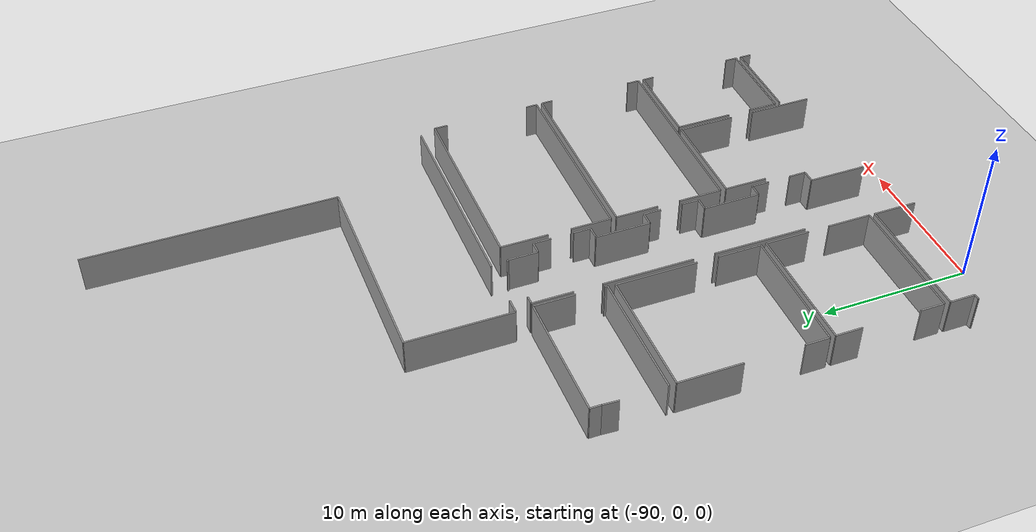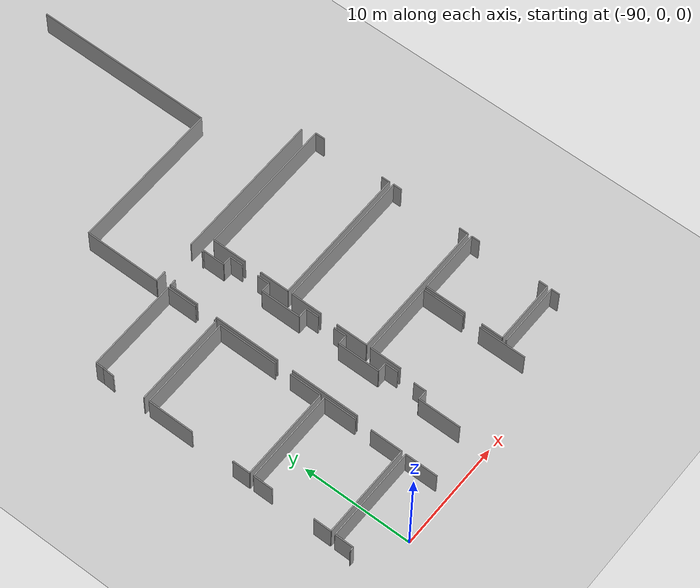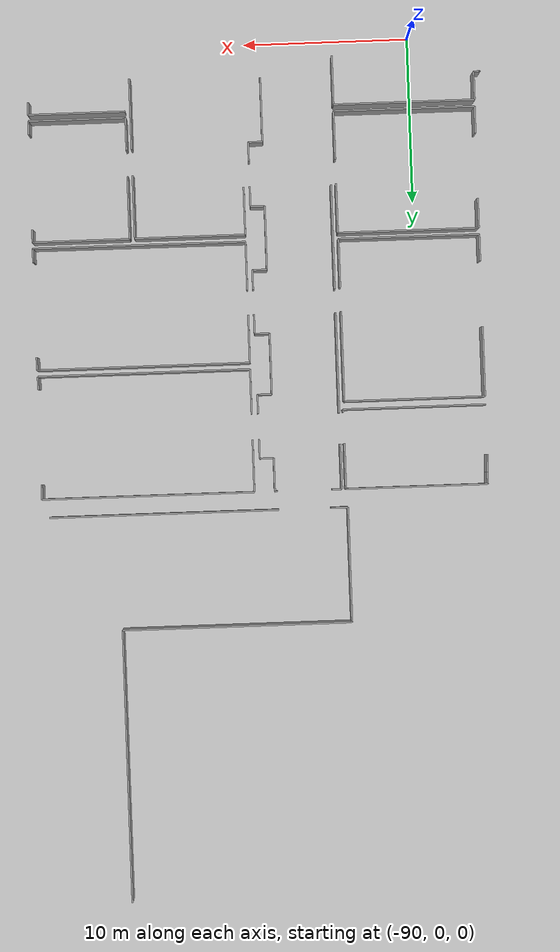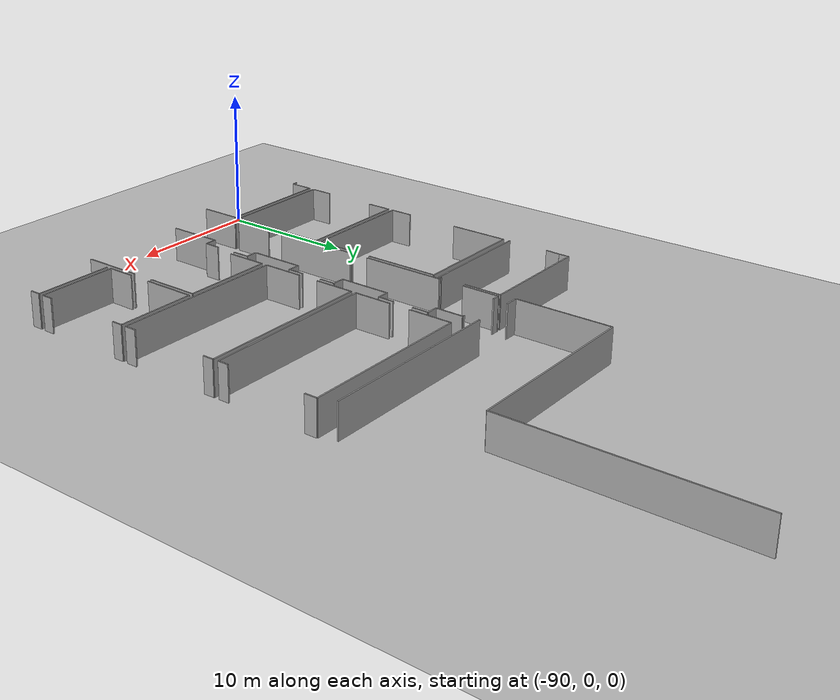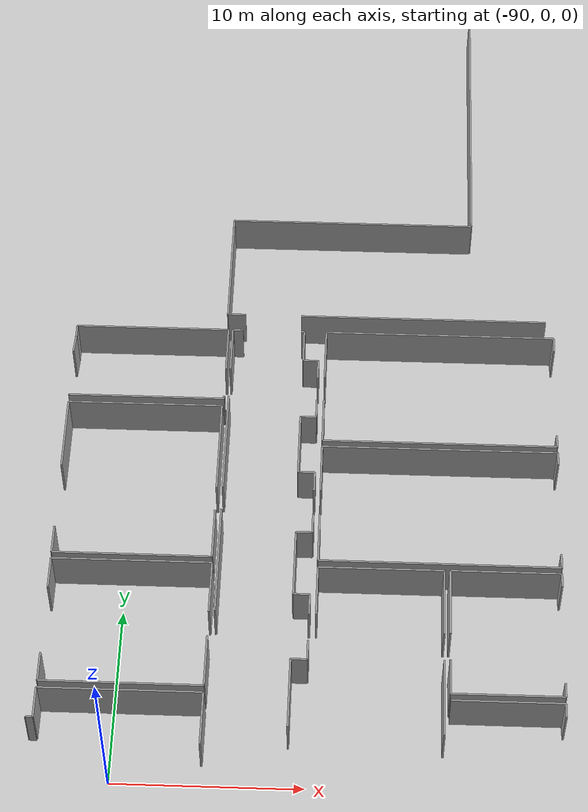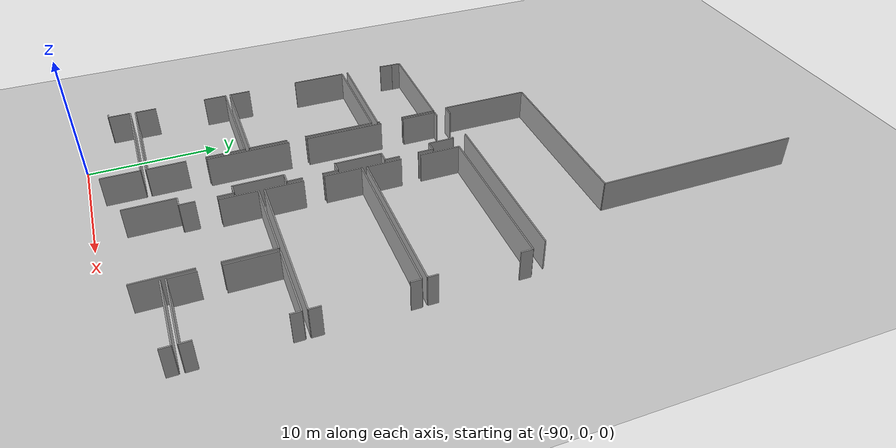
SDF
<sdf version="1.6">
 <world name="default">
  <model name="ground_plane">
   <static>1</static>
   <link name="link">
    <collision name="collision">
     <geometry><plane><normal>0 0 1</normal><size>100 100</size></plane></geometry>
     <surface><friction><ode><mu>100</mu><mu2>50</mu2></ode></friction></surface>
    </collision>
    <visual name="visual">
     <cast_shadows>0</cast_shadows>
     <geometry><plane><normal>0 0 1</normal><size>100 100</size></plane></geometry>
     <material>
      <script><uri>file://media/materials/scripts/gazebo.material</uri><name>Gazebo/Grey</name></script>
     </material>
    </visual>
   </link>
  </model>
  <model name="0510035517_A_40_1_105">
   <static>1</static>
   <link name="Wall_99">
    <collision name="Wall_99_Collision">
     <geometry><box><size>13.9229777041 0.1 2.5</size></box></geometry>
     <pose>6.96148885204 0 1.25 0 0 0</pose>
    </collision>
    <visual name="Wall_99_Visual">
     <pose>6.96148885204 0 1.25 0 0 0</pose>
     <geometry><box><size>13.9229777041 0.1 2.5</size></box></geometry>
     <material>
      <script><uri>file://media/materials/scripts/gazebo.material</uri><name>Gazebo/Grey</name></script>
      <ambient>1 1 1 1</ambient>
     </material>
    </visual>
    <pose>27.3864394503 -35.2833533482 0 0 0 3.14159265359</pose>
   </link>
   <link name="Wall_100">
    <collision name="Wall_100_Collision">
     <geometry><box><size>1.01916979598 0.1 2.5</size></box></geometry>
     <pose>0.509584897988 0 1.25 0 0 0</pose>
    </collision>
    <visual name="Wall_100_Visual">
     <pose>0.509584897988 0 1.25 0 0 0</pose>
     <geometry><box><size>1.01916979598 0.1 2.5</size></box></geometry>
     <material>
      <script><uri>file://media/materials/scripts/gazebo.material</uri><name>Gazebo/Grey</name></script>
      <ambient>1 1 1 1</ambient>
     </material>
    </visual>
    <pose>10.2908192117 -35.2833533482 0 0 0 3.14159265359</pose>
   </link>
   <link name="Wall_101">
    <collision name="Wall_101_Collision">
     <geometry><box><size>6.96847817109 0.1 2.5</size></box></geometry>
     <pose>3.48423908554 0 1.25 0 0 0</pose>
    </collision>
    <visual name="Wall_101_Visual">
     <pose>3.48423908554 0 1.25 0 0 0</pose>
     <geometry><box><size>6.96847817109 0.1 2.5</size></box></geometry>
     <material>
      <script><uri>file://media/materials/scripts/gazebo.material</uri><name>Gazebo/Grey</name></script>
      <ambient>1 1 1 1</ambient>
     </material>
    </visual>
    <pose>9.27164941576 -35.2833533482 0 0 0 1.57079632679</pose>
   </link>
   <link name="Wall_102">
    <collision name="Wall_102_Collision">
     <geometry><box><size>13.9204361335 0.1 2.5</size></box></geometry>
     <pose>6.96021806675 0 1.25 0 0 0</pose>
    </collision>
    <visual name="Wall_102_Visual">
     <pose>6.96021806675 0 1.25 0 0 0</pose>
     <geometry><box><size>13.9204361335 0.1 2.5</size></box></geometry>
     <material>
      <script><uri>file://media/materials/scripts/gazebo.material</uri><name>Gazebo/Grey</name></script>
      <ambient>1 1 1 1</ambient>
     </material>
    </visual>
    <pose>9.27164941576 -28.3148751771 0 0 0 0.0</pose>
   </link>
   <link name="Wall_103">
    <collision name="Wall_103_Collision">
     <geometry><box><size>16.5209711341 0.1 2.5</size></box></geometry>
     <pose>8.26048556706 0 1.25 0 0 0</pose>
    </collision>
    <visual name="Wall_103_Visual">
     <pose>8.26048556706 0 1.25 0 0 0</pose>
     <geometry><box><size>16.5209711341 0.1 2.5</size></box></geometry>
     <material>
      <script><uri>file://media/materials/scripts/gazebo.material</uri><name>Gazebo/Grey</name></script>
      <ambient>1 1 1 1</ambient>
     </material>
    </visual>
    <pose>23.1920855493 -28.3148751771 0 0 0 1.57079632679</pose>
   </link>
   <link name="Wall_321">
    <collision name="Wall_321_Collision">
     <geometry><box><size>0.732734793466 0.1 2.5</size></box></geometry>
     <pose>0.366367396733 0 1.25 0 0 0</pose>
    </collision>
    <visual name="Wall_321_Visual">
     <pose>0.366367396733 0 1.25 0 0 0</pose>
     <geometry><box><size>0.732734793466 0.1 2.5</size></box></geometry>
     <material>
      <script><uri>file://media/materials/scripts/gazebo.material</uri><name>Gazebo/Grey</name></script>
      <ambient>1 1 1 1</ambient>
     </material>
    </visual>
    <pose>0.744934332171 -37.1326000902 0 0 0 1.57079632679</pose>
   </link>
   <link name="Wall_322">
    <collision name="Wall_322_Collision">
     <geometry><box><size>8.61007859807 0.1 2.5</size></box></geometry>
     <pose>4.30503929903 0 1.25 0 0 0</pose>
    </collision>
    <visual name="Wall_322_Visual">
     <pose>4.30503929903 0 1.25 0 0 0</pose>
     <geometry><box><size>8.61007859807 0.1 2.5</size></box></geometry>
     <material>
      <script><uri>file://media/materials/scripts/gazebo.material</uri><name>Gazebo/Grey</name></script>
      <ambient>1 1 1 1</ambient>
     </material>
    </visual>
    <pose>0.744934332171 -36.3998652968 0 0 0 0.0</pose>
   </link>
   <link name="Wall_323">
    <collision name="Wall_323_Collision">
     <geometry><box><size>2.75455417675 0.1 2.5</size></box></geometry>
     <pose>1.37727708838 0 1.25 0 0 0</pose>
    </collision>
    <visual name="Wall_323_Visual">
     <pose>1.37727708838 0 1.25 0 0 0</pose>
     <geometry><box><size>2.75455417675 0.1 2.5</size></box></geometry>
     <material>
      <script><uri>file://media/materials/scripts/gazebo.material</uri><name>Gazebo/Grey</name></script>
      <ambient>1 1 1 1</ambient>
     </material>
    </visual>
    <pose>9.35501293024 -36.3998652968 0 0 0 -1.57079632679</pose>
   </link>
   <link name="Wall_324">
    <collision name="Wall_324_Collision">
     <geometry><box><size>0.180451510011 0.1 2.5</size></box></geometry>
     <pose>0.0902257550053 0 1.25 0 0 0</pose>
    </collision>
    <visual name="Wall_324_Visual">
     <pose>0.0902257550053 0 1.25 0 0 0</pose>
     <geometry><box><size>0.180451510011 0.1 2.5</size></box></geometry>
     <material>
      <script><uri>file://media/materials/scripts/gazebo.material</uri><name>Gazebo/Grey</name></script>
      <ambient>1 1 1 1</ambient>
     </material>
    </visual>
    <pose>9.35501293024 -41.046364601 0 0 0 -1.57079632679</pose>
   </link>
   <link name="Wall_325">
    <collision name="Wall_325_Collision">
     <geometry><box><size>8.67310954805 0.1 2.5</size></box></geometry>
     <pose>4.33655477402 0 1.25 0 0 0</pose>
    </collision>
    <visual name="Wall_325_Visual">
     <pose>4.33655477402 0 1.25 0 0 0</pose>
     <geometry><box><size>8.67310954805 0.1 2.5</size></box></geometry>
     <material>
      <script><uri>file://media/materials/scripts/gazebo.material</uri><name>Gazebo/Grey</name></script>
      <ambient>1 1 1 1</ambient>
     </material>
    </visual>
    <pose>9.35501293024 -41.226816111 0 0 0 3.14159265359</pose>
   </link>
   <link name="Wall_326">
    <collision name="Wall_326_Collision">
     <geometry><box><size>1.0632298287 0.1 2.5</size></box></geometry>
     <pose>0.531614914349 0 1.25 0 0 0</pose>
    </collision>
    <visual name="Wall_326_Visual">
     <pose>0.531614914349 0 1.25 0 0 0</pose>
     <geometry><box><size>1.0632298287 0.1 2.5</size></box></geometry>
     <material>
      <script><uri>file://media/materials/scripts/gazebo.material</uri><name>Gazebo/Grey</name></script>
      <ambient>1 1 1 1</ambient>
     </material>
    </visual>
    <pose>0.681903382195 -38.1939599576 0 0 0 1.51147902182</pose>
   </link>
   <link name="Wall_327">
    <collision name="Wall_327_Collision">
     <geometry><box><size>1.6263510036 0.1 2.5</size></box></geometry>
     <pose>0.813175501801 0 1.25 0 0 0</pose>
    </collision>
    <visual name="Wall_327_Visual">
     <pose>0.813175501801 0 1.25 0 0 0</pose>
     <geometry><box><size>1.6263510036 0.1 2.5</size></box></geometry>
     <material>
      <script><uri>file://media/materials/scripts/gazebo.material</uri><name>Gazebo/Grey</name></script>
      <ambient>1 1 1 1</ambient>
     </material>
    </visual>
    <pose>0.728414123508 -51.5588087659 0 0 0 1.57079632679</pose>
   </link>
   <link name="Wall_328">
    <collision name="Wall_328_Collision">
     <geometry><box><size>4.25433496629 0.1 2.5</size></box></geometry>
     <pose>2.12716748315 0 1.25 0 0 0</pose>
    </collision>
    <visual name="Wall_328_Visual">
     <pose>2.12716748315 0 1.25 0 0 0</pose>
     <geometry><box><size>4.25433496629 0.1 2.5</size></box></geometry>
     <material>
      <script><uri>file://media/materials/scripts/gazebo.material</uri><name>Gazebo/Grey</name></script>
      <ambient>1 1 1 1</ambient>
     </material>
    </visual>
    <pose>0.728414123508 -45.971165882 0 0 0 1.57079632679</pose>
   </link>
   <link name="Wall_329">
    <collision name="Wall_329_Collision">
     <geometry><box><size>8.54374360636 0.1 2.5</size></box></geometry>
     <pose>4.27187180318 0 1.25 0 0 0</pose>
    </collision>
    <visual name="Wall_329_Visual">
     <pose>4.27187180318 0 1.25 0 0 0</pose>
     <geometry><box><size>8.54374360636 0.1 2.5</size></box></geometry>
     <material>
      <script><uri>file://media/materials/scripts/gazebo.material</uri><name>Gazebo/Grey</name></script>
      <ambient>1 1 1 1</ambient>
     </material>
    </visual>
    <pose>0.728414123508 -41.7168309157 0 0 0 0.0</pose>
   </link>
   <link name="Wall_330">
    <collision name="Wall_330_Collision">
     <geometry><box><size>5.45827694224 0.1 2.5</size></box></geometry>
     <pose>2.72913847112 0 1.25 0 0 0</pose>
    </collision>
    <visual name="Wall_330_Visual">
     <pose>2.72913847112 0 1.25 0 0 0</pose>
     <geometry><box><size>5.45827694224 0.1 2.5</size></box></geometry>
     <material>
      <script><uri>file://media/materials/scripts/gazebo.material</uri><name>Gazebo/Grey</name></script>
      <ambient>1 1 1 1</ambient>
     </material>
    </visual>
    <pose>9.27215772987 -41.7168309157 0 0 0 -1.57079632679</pose>
   </link>
   <link name="Wall_331">
    <collision name="Wall_331_Collision">
     <geometry><box><size>2.94212208434 0.1 2.5</size></box></geometry>
     <pose>1.47106104217 0 1.25 0 0 0</pose>
    </collision>
    <visual name="Wall_331_Visual">
     <pose>1.47106104217 0 1.25 0 0 0</pose>
     <geometry><box><size>2.94212208434 0.1 2.5</size></box></geometry>
     <material>
      <script><uri>file://media/materials/scripts/gazebo.material</uri><name>Gazebo/Grey</name></script>
      <ambient>1 1 1 1</ambient>
     </material>
    </visual>
    <pose>9.27215772987 -48.636765089 0 0 0 -1.57079632679</pose>
   </link>
   <link name="Wall_332">
    <collision name="Wall_332_Collision">
     <geometry><box><size>8.54376719917 0.1 2.5</size></box></geometry>
     <pose>4.27188359959 0 1.25 0 0 0</pose>
    </collision>
    <visual name="Wall_332_Visual">
     <pose>4.27188359959 0 1.25 0 0 0</pose>
     <geometry><box><size>8.54376719917 0.1 2.5</size></box></geometry>
     <material>
      <script><uri>file://media/materials/scripts/gazebo.material</uri><name>Gazebo/Grey</name></script>
      <ambient>1 1 1 1</ambient>
     </material>
    </visual>
    <pose>9.27215772987 -51.5788871733 0 0 0 3.13924258652</pose>
   </link>
   <link name="Wall_333">
    <collision name="Wall_333_Collision">
     <geometry><box><size>1.62711347477 0.1 2.5</size></box></geometry>
     <pose>0.813556737386 0 1.25 0 0 0</pose>
    </collision>
    <visual name="Wall_333_Visual">
     <pose>0.813556737386 0 1.25 0 0 0</pose>
     <geometry><box><size>1.62711347477 0.1 2.5</size></box></geometry>
     <material>
      <script><uri>file://media/materials/scripts/gazebo.material</uri><name>Gazebo/Grey</name></script>
      <ambient>1 1 1 1</ambient>
     </material>
    </visual>
    <pose>0.739088719874 -59.3192403246 0 0 0 1.57079632679</pose>
   </link>
   <link name="Wall_334">
    <collision name="Wall_334_Collision">
     <geometry><box><size>1.79765285958 0.1 2.5</size></box></geometry>
     <pose>0.898826429792 0 1.25 0 0 0</pose>
    </collision>
    <visual name="Wall_334_Visual">
     <pose>0.898826429792 0 1.25 0 0 0</pose>
     <geometry><box><size>1.79765285958 0.1 2.5</size></box></geometry>
     <material>
      <script><uri>file://media/materials/scripts/gazebo.material</uri><name>Gazebo/Grey</name></script>
      <ambient>1 1 1 1</ambient>
     </material>
    </visual>
    <pose>0.739088719874 -53.7404929376 0 0 0 1.57079632679</pose>
   </link>
   <link name="Wall_335">
    <collision name="Wall_335_Collision">
     <geometry><box><size>8.55975550091 0.1 2.5</size></box></geometry>
     <pose>4.27987775046 0 1.25 0 0 0</pose>
    </collision>
    <visual name="Wall_335_Visual">
     <pose>4.27987775046 0 1.25 0 0 0</pose>
     <geometry><box><size>8.55975550091 0.1 2.5</size></box></geometry>
     <material>
      <script><uri>file://media/materials/scripts/gazebo.material</uri><name>Gazebo/Grey</name></script>
      <ambient>1 1 1 1</ambient>
     </material>
    </visual>
    <pose>0.739088719874 -51.942840078 0 0 0 0.0</pose>
   </link>
   <link name="Wall_336">
    <collision name="Wall_336_Collision">
     <geometry><box><size>3.00006989319 0.1 2.5</size></box></geometry>
     <pose>1.5000349466 0 1.25 0 0 0</pose>
    </collision>
    <visual name="Wall_336_Visual">
     <pose>1.5000349466 0 1.25 0 0 0</pose>
     <geometry><box><size>3.00006989319 0.1 2.5</size></box></geometry>
     <material>
      <script><uri>file://media/materials/scripts/gazebo.material</uri><name>Gazebo/Grey</name></script>
      <ambient>1 1 1 1</ambient>
     </material>
    </visual>
    <pose>9.29884422079 -51.942840078 0 0 0 -1.57079632679</pose>
   </link>
   <link name="Wall_337">
    <collision name="Wall_337_Collision">
     <geometry><box><size>2.93373490148 0.1 2.5</size></box></geometry>
     <pose>1.46686745074 0 1.25 0 0 0</pose>
    </collision>
    <visual name="Wall_337_Visual">
     <pose>1.46686745074 0 1.25 0 0 0</pose>
     <geometry><box><size>2.93373490148 0.1 2.5</size></box></geometry>
     <material>
      <script><uri>file://media/materials/scripts/gazebo.material</uri><name>Gazebo/Grey</name></script>
      <ambient>1 1 1 1</ambient>
     </material>
    </visual>
    <pose>9.29884422079 -56.4043130452 0 0 0 -1.57079632679</pose>
   </link>
   <link name="Wall_338">
    <collision name="Wall_338_Collision">
     <geometry><box><size>8.55977616308 0.1 2.5</size></box></geometry>
     <pose>4.27988808154 0 1.25 0 0 0</pose>
    </collision>
    <visual name="Wall_338_Visual">
     <pose>4.27988808154 0 1.25 0 0 0</pose>
     <geometry><box><size>8.55977616308 0.1 2.5</size></box></geometry>
     <material>
      <script><uri>file://media/materials/scripts/gazebo.material</uri><name>Gazebo/Grey</name></script>
      <ambient>1 1 1 1</ambient>
     </material>
    </visual>
    <pose>9.29884422079 -59.3380479467 0 0 0 3.13939544224</pose>
   </link>
   <link name="Wall_341">
    <collision name="Wall_341_Collision">
     <geometry><box><size>0.0315154749878 0.1 2.5</size></box></geometry>
     <pose>0.0157577374939 0 1.25 0 0 0</pose>
    </collision>
    <visual name="Wall_341_Visual">
     <pose>0.0157577374939 0 1.25 0 0 0</pose>
     <geometry><box><size>0.0315154749878 0.1 2.5</size></box></geometry>
     <material>
      <script><uri>file://media/materials/scripts/gazebo.material</uri><name>Gazebo/Grey</name></script>
      <ambient>1 1 1 1</ambient>
     </material>
    </visual>
    <pose>0.349720109542 -61.4615301526 0 0 0 1.57079632679</pose>
   </link>
   <link name="Wall_342">
    <collision name="Wall_342_Collision">
     <geometry><box><size>0.370560988163 0.1 2.5</size></box></geometry>
     <pose>0.185280494081 0 1.25 0 0 0</pose>
    </collision>
    <visual name="Wall_342_Visual">
     <pose>0.185280494081 0 1.25 0 0 0</pose>
     <geometry><box><size>0.370560988163 0.1 2.5</size></box></geometry>
     <material>
      <script><uri>file://media/materials/scripts/gazebo.material</uri><name>Gazebo/Grey</name></script>
      <ambient>1 1 1 1</ambient>
     </material>
    </visual>
    <pose>0.349720109542 -61.4300146776 0 0 0 0.0</pose>
   </link>
   <link name="Wall_343">
    <collision name="Wall_343_Collision">
     <geometry><box><size>1.70234396345 0.1 2.5</size></box></geometry>
     <pose>0.851171981726 0 1.25 0 0 0</pose>
    </collision>
    <visual name="Wall_343_Visual">
     <pose>0.851171981726 0 1.25 0 0 0</pose>
     <geometry><box><size>1.70234396345 0.1 2.5</size></box></geometry>
     <material>
      <script><uri>file://media/materials/scripts/gazebo.material</uri><name>Gazebo/Grey</name></script>
      <ambient>1 1 1 1</ambient>
     </material>
    </visual>
    <pose>0.720281097704 -61.4300146776 0 0 0 1.57079632679</pose>
   </link>
   <link name="Wall_344">
    <collision name="Wall_344_Collision">
     <geometry><box><size>8.569159312 0.1 2.5</size></box></geometry>
     <pose>4.284579656 0 1.25 0 0 0</pose>
    </collision>
    <visual name="Wall_344_Visual">
     <pose>4.284579656 0 1.25 0 0 0</pose>
     <geometry><box><size>8.569159312 0.1 2.5</size></box></geometry>
     <material>
      <script><uri>file://media/materials/scripts/gazebo.material</uri><name>Gazebo/Grey</name></script>
      <ambient>1 1 1 1</ambient>
     </material>
    </visual>
    <pose>0.720281097704 -59.7276707141 0 0 0 0.0</pose>
   </link>
   <link name="Wall_345">
    <collision name="Wall_345_Collision">
     <geometry><box><size>2.9545757801 0.1 2.5</size></box></geometry>
     <pose>1.47728789005 0 1.25 0 0 0</pose>
    </collision>
    <visual name="Wall_345_Visual">
     <pose>1.47728789005 0 1.25 0 0 0</pose>
     <geometry><box><size>2.9545757801 0.1 2.5</size></box></geometry>
     <material>
      <script><uri>file://media/materials/scripts/gazebo.material</uri><name>Gazebo/Grey</name></script>
      <ambient>1 1 1 1</ambient>
     </material>
    </visual>
    <pose>9.2894404097 -59.7276707141 0 0 0 -1.57079632679</pose>
   </link>
   <link name="Wall_435">
    <collision name="Wall_435_Collision">
     <geometry><box><size>5.8730612582 0.1 2.5</size></box></geometry>
     <pose>2.9365306291 0 1.25 0 0 0</pose>
    </collision>
    <visual name="Wall_435_Visual">
     <pose>2.9365306291 0 1.25 0 0 0</pose>
     <geometry><box><size>5.8730612582 0.1 2.5</size></box></geometry>
     <material>
      <script><uri>file://media/materials/scripts/gazebo.material</uri><name>Gazebo/Grey</name></script>
      <ambient>1 1 1 1</ambient>
     </material>
    </visual>
    <pose>21.9378204762 -59.758932032 0 0 0 0.0</pose>
   </link>
   <link name="Wall_436">
    <collision name="Wall_436_Collision">
     <geometry><box><size>0.772383294257 0.1 2.5</size></box></geometry>
     <pose>0.386191647128 0 1.25 0 0 0</pose>
    </collision>
    <visual name="Wall_436_Visual">
     <pose>0.386191647128 0 1.25 0 0 0</pose>
     <geometry><box><size>0.772383294257 0.1 2.5</size></box></geometry>
     <material>
      <script><uri>file://media/materials/scripts/gazebo.material</uri><name>Gazebo/Grey</name></script>
      <ambient>1 1 1 1</ambient>
     </material>
    </visual>
    <pose>27.8108817344 -59.758932032 0 0 0 -1.57079632679</pose>
   </link>
   <link name="Wall_439">
    <collision name="Wall_439_Collision">
     <geometry><box><size>1.97251291436 0.1 2.5</size></box></geometry>
     <pose>0.986256457178 0 1.25 0 0 0</pose>
    </collision>
    <visual name="Wall_439_Visual">
     <pose>0.986256457178 0 1.25 0 0 0</pose>
     <geometry><box><size>1.97251291436 0.1 2.5</size></box></geometry>
     <material>
      <script><uri>file://media/materials/scripts/gazebo.material</uri><name>Gazebo/Grey</name></script>
      <ambient>1 1 1 1</ambient>
     </material>
    </visual>
    <pose>21.9299416074 -59.3827795886 0 0 0 1.57079632679</pose>
   </link>
   <link name="Wall_440">
    <collision name="Wall_440_Collision">
     <geometry><box><size>3.79863136425 0.1 2.5</size></box></geometry>
     <pose>1.89931568213 0 1.25 0 0 0</pose>
    </collision>
    <visual name="Wall_440_Visual">
     <pose>1.89931568213 0 1.25 0 0 0</pose>
     <geometry><box><size>3.79863136425 0.1 2.5</size></box></geometry>
     <material>
      <script><uri>file://media/materials/scripts/gazebo.material</uri><name>Gazebo/Grey</name></script>
      <ambient>1 1 1 1</ambient>
     </material>
    </visual>
    <pose>21.9299416074 -55.8179727162 0 0 0 1.57079632679</pose>
   </link>
   <link name="Wall_441">
    <collision name="Wall_441_Collision">
     <geometry><box><size>5.89085225215 0.1 2.5</size></box></geometry>
     <pose>2.94542612607 0 1.25 0 0 0</pose>
    </collision>
    <visual name="Wall_441_Visual">
     <pose>2.94542612607 0 1.25 0 0 0</pose>
     <geometry><box><size>5.89085225215 0.1 2.5</size></box></geometry>
     <material>
      <script><uri>file://media/materials/scripts/gazebo.material</uri><name>Gazebo/Grey</name></script>
      <ambient>1 1 1 1</ambient>
     </material>
    </visual>
    <pose>21.9299416074 -52.019341352 0 0 0 0.0</pose>
   </link>
   <link name="Wall_442">
    <collision name="Wall_442_Collision">
     <geometry><box><size>0.773908236595 0.1 2.5</size></box></geometry>
     <pose>0.386954118297 0 1.25 0 0 0</pose>
    </collision>
    <visual name="Wall_442_Visual">
     <pose>0.386954118297 0 1.25 0 0 0</pose>
     <geometry><box><size>0.773908236595 0.1 2.5</size></box></geometry>
     <material>
      <script><uri>file://media/materials/scripts/gazebo.material</uri><name>Gazebo/Grey</name></script>
      <ambient>1 1 1 1</ambient>
     </material>
    </visual>
    <pose>27.8207938596 -52.019341352 0 0 0 -1.57079632679</pose>
   </link>
   <link name="Wall_443">
    <collision name="Wall_443_Collision">
     <geometry><box><size>0.814319208555 0.1 2.5</size></box></geometry>
     <pose>0.407159604277 0 1.25 0 0 0</pose>
    </collision>
    <visual name="Wall_443_Visual">
     <pose>0.407159604277 0 1.25 0 0 0</pose>
     <geometry><box><size>0.814319208555 0.1 2.5</size></box></geometry>
     <material>
      <script><uri>file://media/materials/scripts/gazebo.material</uri><name>Gazebo/Grey</name></script>
      <ambient>1 1 1 1</ambient>
     </material>
    </visual>
    <pose>27.8207938596 -58.5661729666 0 0 0 -1.57079632679</pose>
   </link>
   <link name="Wall_444">
    <collision name="Wall_444_Collision">
     <geometry><box><size>5.89085269625 0.1 2.5</size></box></geometry>
     <pose>2.94542634812 0 1.25 0 0 0</pose>
    </collision>
    <visual name="Wall_444_Visual">
     <pose>2.94542634812 0 1.25 0 0 0</pose>
     <geometry><box><size>5.89085269625 0.1 2.5</size></box></geometry>
     <material>
      <script><uri>file://media/materials/scripts/gazebo.material</uri><name>Gazebo/Grey</name></script>
      <ambient>1 1 1 1</ambient>
     </material>
    </visual>
    <pose>27.8207938596 -59.3804921751 0 0 0 -3.14120435436</pose>
   </link>
   <link name="Wall_451">
    <collision name="Wall_451_Collision">
     <geometry><box><size>2.87858282025 0.1 2.5</size></box></geometry>
     <pose>1.43929141013 0 1.25 0 0 0</pose>
    </collision>
    <visual name="Wall_451_Visual">
     <pose>1.43929141013 0 1.25 0 0 0</pose>
     <geometry><box><size>2.87858282025 0.1 2.5</size></box></geometry>
     <material>
      <script><uri>file://media/materials/scripts/gazebo.material</uri><name>Gazebo/Grey</name></script>
      <ambient>1 1 1 1</ambient>
     </material>
    </visual>
    <pose>14.9136819097 -54.9106320251 0 0 0 1.57079632679</pose>
   </link>
   <link name="Wall_452">
    <collision name="Wall_452_Collision">
     <geometry><box><size>6.70491730365 0.1 2.5</size></box></geometry>
     <pose>3.35245865182 0 1.25 0 0 0</pose>
    </collision>
    <visual name="Wall_452_Visual">
     <pose>3.35245865182 0 1.25 0 0 0</pose>
     <geometry><box><size>6.70491730365 0.1 2.5</size></box></geometry>
     <material>
      <script><uri>file://media/materials/scripts/gazebo.material</uri><name>Gazebo/Grey</name></script>
      <ambient>1 1 1 1</ambient>
     </material>
    </visual>
    <pose>14.9136819097 -52.0320492048 0 0 0 0.0</pose>
   </link>
   <link name="Wall_453">
    <collision name="Wall_453_Collision">
     <geometry><box><size>3.82811358279 0.1 2.5</size></box></geometry>
     <pose>1.91405679139 0 1.25 0 0 0</pose>
    </collision>
    <visual name="Wall_453_Visual">
     <pose>1.91405679139 0 1.25 0 0 0</pose>
     <geometry><box><size>3.82811358279 0.1 2.5</size></box></geometry>
     <material>
      <script><uri>file://media/materials/scripts/gazebo.material</uri><name>Gazebo/Grey</name></script>
      <ambient>1 1 1 1</ambient>
     </material>
    </visual>
    <pose>21.6185992134 -52.0320492048 0 0 0 -1.57079632679</pose>
   </link>
   <link name="Wall_454">
    <collision name="Wall_454_Collision">
     <geometry><box><size>4.29195021063 0.1 2.5</size></box></geometry>
     <pose>2.14597510532 0 1.25 0 0 0</pose>
    </collision>
    <visual name="Wall_454_Visual">
     <pose>2.14597510532 0 1.25 0 0 0</pose>
     <geometry><box><size>4.29195021063 0.1 2.5</size></box></geometry>
     <material>
      <script><uri>file://media/materials/scripts/gazebo.material</uri><name>Gazebo/Grey</name></script>
      <ambient>1 1 1 1</ambient>
     </material>
    </visual>
    <pose>21.6185992134 -57.4557607874 0 0 0 -1.57079632679</pose>
   </link>
   <link name="Wall_461">
    <collision name="Wall_461_Collision">
     <geometry><box><size>2.73269666991 0.1 2.5</size></box></geometry>
     <pose>1.36634833495 0 1.25 0 0 0</pose>
    </collision>
    <visual name="Wall_461_Visual">
     <pose>1.36634833495 0 1.25 0 0 0</pose>
     <geometry><box><size>2.73269666991 0.1 2.5</size></box></geometry>
     <material>
      <script><uri>file://media/materials/scripts/gazebo.material</uri><name>Gazebo/Grey</name></script>
      <ambient>1 1 1 1</ambient>
     </material>
    </visual>
    <pose>14.914698538 -43.8710661253 0 0 0 1.57079632679</pose>
   </link>
   <link name="Wall_462">
    <collision name="Wall_462_Collision">
     <geometry><box><size>3.1823005026 0.1 2.5</size></box></geometry>
     <pose>1.5911502513 0 1.25 0 0 0</pose>
    </collision>
    <visual name="Wall_462_Visual">
     <pose>1.5911502513 0 1.25 0 0 0</pose>
     <geometry><box><size>3.1823005026 0.1 2.5</size></box></geometry>
     <material>
      <script><uri>file://media/materials/scripts/gazebo.material</uri><name>Gazebo/Grey</name></script>
      <ambient>1 1 1 1</ambient>
     </material>
    </visual>
    <pose>14.914698538 -39.589790511 0 0 0 1.57079632679</pose>
   </link>
   <link name="Wall_463">
    <collision name="Wall_463_Collision">
     <geometry><box><size>12.8816962442 0.1 2.5</size></box></geometry>
     <pose>6.4408481221 0 1.25 0 0 0</pose>
    </collision>
    <visual name="Wall_463_Visual">
     <pose>6.4408481221 0 1.25 0 0 0</pose>
     <geometry><box><size>12.8816962442 0.1 2.5</size></box></geometry>
     <material>
      <script><uri>file://media/materials/scripts/gazebo.material</uri><name>Gazebo/Grey</name></script>
      <ambient>1 1 1 1</ambient>
     </material>
    </visual>
    <pose>14.914698538 -36.4074900085 0 0 0 0.0</pose>
   </link>
   <link name="Wall_464">
    <collision name="Wall_464_Collision">
     <geometry><box><size>0.896411937757 0.1 2.5</size></box></geometry>
     <pose>0.448205968878 0 1.25 0 0 0</pose>
    </collision>
    <visual name="Wall_464_Visual">
     <pose>0.448205968878 0 1.25 0 0 0</pose>
     <geometry><box><size>0.896411937757 0.1 2.5</size></box></geometry>
     <material>
      <script><uri>file://media/materials/scripts/gazebo.material</uri><name>Gazebo/Grey</name></script>
      <ambient>1 1 1 1</ambient>
     </material>
    </visual>
    <pose>27.7963947822 -36.4074900085 0 0 0 -1.57079632679</pose>
   </link>
   <link name="Wall_465">
    <collision name="Wall_465_Collision">
     <geometry><box><size>0.770858351919 0.1 2.5</size></box></geometry>
     <pose>0.385429175959 0 1.25 0 0 0</pose>
    </collision>
    <visual name="Wall_465_Visual">
     <pose>0.385429175959 0 1.25 0 0 0</pose>
     <geometry><box><size>0.770858351919 0.1 2.5</size></box></geometry>
     <material>
      <script><uri>file://media/materials/scripts/gazebo.material</uri><name>Gazebo/Grey</name></script>
      <ambient>1 1 1 1</ambient>
     </material>
    </visual>
    <pose>27.7963947822 -43.0969037317 0 0 0 -1.57079632679</pose>
   </link>
   <link name="Wall_466">
    <collision name="Wall_466_Collision">
     <geometry><box><size>12.8816966679 0.1 2.5</size></box></geometry>
     <pose>6.44084833396 0 1.25 0 0 0</pose>
    </collision>
    <visual name="Wall_466_Visual">
     <pose>6.44084833396 0 1.25 0 0 0</pose>
     <geometry><box><size>12.8816966679 0.1 2.5</size></box></geometry>
     <material>
      <script><uri>file://media/materials/scripts/gazebo.material</uri><name>Gazebo/Grey</name></script>
      <ambient>1 1 1 1</ambient>
     </material>
    </visual>
    <pose>27.7963947822 -43.8677620836 0 0 0 -3.1413361624</pose>
   </link>
   <link name="Wall_467">
    <collision name="Wall_467_Collision">
     <geometry><box><size>2.91416480814 0.1 2.5</size></box></geometry>
     <pose>1.45708240407 0 1.25 0 0 0</pose>
    </collision>
    <visual name="Wall_467_Visual">
     <pose>1.45708240407 0 1.25 0 0 0</pose>
     <geometry><box><size>2.91416480814 0.1 2.5</size></box></geometry>
     <material>
      <script><uri>file://media/materials/scripts/gazebo.material</uri><name>Gazebo/Grey</name></script>
      <ambient>1 1 1 1</ambient>
     </material>
    </visual>
    <pose>14.9124111245 -51.6083693919 0 0 0 1.57079632679</pose>
   </link>
   <link name="Wall_468">
    <collision name="Wall_468_Collision">
     <geometry><box><size>2.88544506078 0.1 2.5</size></box></geometry>
     <pose>1.44272253039 0 1.25 0 0 0</pose>
    </collision>
    <visual name="Wall_468_Visual">
     <pose>1.44272253039 0 1.25 0 0 0</pose>
     <geometry><box><size>2.88544506078 0.1 2.5</size></box></geometry>
     <material>
      <script><uri>file://media/materials/scripts/gazebo.material</uri><name>Gazebo/Grey</name></script>
      <ambient>1 1 1 1</ambient>
     </material>
    </visual>
    <pose>14.9124111245 -47.1463881105 0 0 0 1.57079632679</pose>
   </link>
   <link name="Wall_469">
    <collision name="Wall_469_Collision">
     <geometry><box><size>12.912449248 0.1 2.5</size></box></geometry>
     <pose>6.45622462401 0 1.25 0 0 0</pose>
    </collision>
    <visual name="Wall_469_Visual">
     <pose>6.45622462401 0 1.25 0 0 0</pose>
     <geometry><box><size>12.912449248 0.1 2.5</size></box></geometry>
     <material>
      <script><uri>file://media/materials/scripts/gazebo.material</uri><name>Gazebo/Grey</name></script>
      <ambient>1 1 1 1</ambient>
     </material>
    </visual>
    <pose>14.9124111245 -44.2609430498 0 0 0 0.0</pose>
   </link>
   <link name="Wall_470">
    <collision name="Wall_470_Collision">
     <geometry><box><size>0.779245534778 0.1 2.5</size></box></geometry>
     <pose>0.389622767389 0 1.25 0 0 0</pose>
    </collision>
    <visual name="Wall_470_Visual">
     <pose>0.389622767389 0 1.25 0 0 0</pose>
     <geometry><box><size>0.779245534778 0.1 2.5</size></box></geometry>
     <material>
      <script><uri>file://media/materials/scripts/gazebo.material</uri><name>Gazebo/Grey</name></script>
      <ambient>1 1 1 1</ambient>
     </material>
    </visual>
    <pose>27.8248603725 -44.2609430498 0 0 0 -1.57079632679</pose>
   </link>
   <link name="Wall_471">
    <collision name="Wall_471_Collision">
     <geometry><box><size>0.837955814796 0.1 2.5</size></box></geometry>
     <pose>0.418977907398 0 1.25 0 0 0</pose>
    </collision>
    <visual name="Wall_471_Visual">
     <pose>0.418977907398 0 1.25 0 0 0</pose>
     <geometry><box><size>0.837955814796 0.1 2.5</size></box></geometry>
     <material>
      <script><uri>file://media/materials/scripts/gazebo.material</uri><name>Gazebo/Grey</name></script>
      <ambient>1 1 1 1</ambient>
     </material>
    </visual>
    <pose>27.8248603725 -50.8070121932 0 0 0 -1.57079632679</pose>
   </link>
   <link name="Wall_472">
    <collision name="Wall_472_Collision">
     <geometry><box><size>12.9125011149 0.1 2.5</size></box></geometry>
     <pose>6.45625055743 0 1.25 0 0 0</pose>
    </collision>
    <visual name="Wall_472_Visual">
     <pose>6.45625055743 0 1.25 0 0 0</pose>
     <geometry><box><size>12.9125011149 0.1 2.5</size></box></geometry>
     <material>
      <script><uri>file://media/materials/scripts/gazebo.material</uri><name>Gazebo/Grey</name></script>
      <ambient>1 1 1 1</ambient>
     </material>
    </visual>
    <pose>27.8248603725 -51.644968008 0 0 0 3.13875829448</pose>
   </link>
   <link name="Wall_473">
    <collision name="Wall_473_Collision">
     <geometry><box><size>0.527375891932 0.1 2.5</size></box></geometry>
     <pose>0.263687945966 0 1.25 0 0 0</pose>
    </collision>
    <visual name="Wall_473_Visual">
     <pose>0.263687945966 0 1.25 0 0 0</pose>
     <geometry><box><size>0.527375891932 0.1 2.5</size></box></geometry>
     <material>
      <script><uri>file://media/materials/scripts/gazebo.material</uri><name>Gazebo/Grey</name></script>
      <ambient>1 1 1 1</ambient>
     </material>
    </visual>
    <pose>9.66228881137 -36.400881925 0 0 0 0.0</pose>
   </link>
   <link name="Wall_474">
    <collision name="Wall_474_Collision">
     <geometry><box><size>0.166218714855 0.1 2.5</size></box></geometry>
     <pose>0.0831093574274 0 1.25 0 0 0</pose>
    </collision>
    <visual name="Wall_474_Visual">
     <pose>0.0831093574274 0 1.25 0 0 0</pose>
     <geometry><box><size>0.166218714855 0.1 2.5</size></box></geometry>
     <material>
      <script><uri>file://media/materials/scripts/gazebo.material</uri><name>Gazebo/Grey</name></script>
      <ambient>1 1 1 1</ambient>
     </material>
    </visual>
    <pose>13.5010769905 -36.400881925 0 0 0 0.0</pose>
   </link>
   <link name="Wall_475">
    <collision name="Wall_475_Collision">
     <geometry><box><size>2.02944409498 0.1 2.5</size></box></geometry>
     <pose>1.01472204749 0 1.25 0 0 0</pose>
    </collision>
    <visual name="Wall_475_Visual">
     <pose>1.01472204749 0 1.25 0 0 0</pose>
     <geometry><box><size>2.02944409498 0.1 2.5</size></box></geometry>
     <material>
      <script><uri>file://media/materials/scripts/gazebo.material</uri><name>Gazebo/Grey</name></script>
      <ambient>1 1 1 1</ambient>
     </material>
    </visual>
    <pose>13.6672957054 -36.400881925 0 0 0 -1.57079632679</pose>
   </link>
   <link name="Wall_476">
    <collision name="Wall_476_Collision">
     <geometry><box><size>0.855238494628 0.1 2.5</size></box></geometry>
     <pose>0.427619247314 0 1.25 0 0 0</pose>
    </collision>
    <visual name="Wall_476_Visual">
     <pose>0.427619247314 0 1.25 0 0 0</pose>
     <geometry><box><size>0.855238494628 0.1 2.5</size></box></geometry>
     <material>
      <script><uri>file://media/materials/scripts/gazebo.material</uri><name>Gazebo/Grey</name></script>
      <ambient>1 1 1 1</ambient>
     </material>
    </visual>
    <pose>13.6672957054 -38.43032602 0 0 0 0.0</pose>
   </link>
   <link name="Wall_477">
    <collision name="Wall_477_Collision">
     <geometry><box><size>1.20140040538 0.1 2.5</size></box></geometry>
     <pose>0.60070020269 0 1.25 0 0 0</pose>
    </collision>
    <visual name="Wall_477_Visual">
     <pose>0.60070020269 0 1.25 0 0 0</pose>
     <geometry><box><size>1.20140040538 0.1 2.5</size></box></geometry>
     <material>
      <script><uri>file://media/materials/scripts/gazebo.material</uri><name>Gazebo/Grey</name></script>
      <ambient>1 1 1 1</ambient>
     </material>
    </visual>
    <pose>14.5225342 -38.43032602 0 0 0 -1.57079632679</pose>
   </link>
   <link name="Wall_478">
    <collision name="Wall_478_Collision">
     <geometry><box><size>1.1581937058 0.1 2.5</size></box></geometry>
     <pose>0.5790968529 0 1.25 0 0 0</pose>
    </collision>
    <visual name="Wall_478_Visual">
     <pose>0.5790968529 0 1.25 0 0 0</pose>
     <geometry><box><size>1.1581937058 0.1 2.5</size></box></geometry>
     <material>
      <script><uri>file://media/materials/scripts/gazebo.material</uri><name>Gazebo/Grey</name></script>
      <ambient>1 1 1 1</ambient>
     </material>
    </visual>
    <pose>14.5225342 -41.1503148371 0 0 0 -1.57079632679</pose>
   </link>
   <link name="Wall_479">
    <collision name="Wall_479_Collision">
     <geometry><box><size>0.871504546234 0.1 2.5</size></box></geometry>
     <pose>0.435752273117 0 1.25 0 0 0</pose>
    </collision>
    <visual name="Wall_479_Visual">
     <pose>0.435752273117 0 1.25 0 0 0</pose>
     <geometry><box><size>0.871504546234 0.1 2.5</size></box></geometry>
     <material>
      <script><uri>file://media/materials/scripts/gazebo.material</uri><name>Gazebo/Grey</name></script>
      <ambient>1 1 1 1</ambient>
     </material>
    </visual>
    <pose>14.5225342 -42.3085085429 0 0 0 3.14159265359</pose>
   </link>
   <link name="Wall_480">
    <collision name="Wall_480_Collision">
     <geometry><box><size>3.69137708647 0.1 2.5</size></box></geometry>
     <pose>1.84568854324 0 1.25 0 0 0</pose>
    </collision>
    <visual name="Wall_480_Visual">
     <pose>1.84568854324 0 1.25 0 0 0</pose>
     <geometry><box><size>3.69137708647 0.1 2.5</size></box></geometry>
     <material>
      <script><uri>file://media/materials/scripts/gazebo.material</uri><name>Gazebo/Grey</name></script>
      <ambient>1 1 1 1</ambient>
     </material>
    </visual>
    <pose>13.6510296538 -42.3085085429 0 0 0 -1.57079632679</pose>
   </link>
   <link name="Wall_481">
    <collision name="Wall_481_Collision">
     <geometry><box><size>0.907849005293 0.1 2.5</size></box></geometry>
     <pose>0.453924502646 0 1.25 0 0 0</pose>
    </collision>
    <visual name="Wall_481_Visual">
     <pose>0.453924502646 0 1.25 0 0 0</pose>
     <geometry><box><size>0.907849005293 0.1 2.5</size></box></geometry>
     <material>
      <script><uri>file://media/materials/scripts/gazebo.material</uri><name>Gazebo/Grey</name></script>
      <ambient>1 1 1 1</ambient>
     </material>
    </visual>
    <pose>13.6510296538 -45.9998856293 0 0 0 0.0</pose>
   </link>
   <link name="Wall_482">
    <collision name="Wall_482_Collision">
     <geometry><box><size>1.18462603966 0.1 2.5</size></box></geometry>
     <pose>0.592313019831 0 1.25 0 0 0</pose>
    </collision>
    <visual name="Wall_482_Visual">
     <pose>0.592313019831 0 1.25 0 0 0</pose>
     <geometry><box><size>1.18462603966 0.1 2.5</size></box></geometry>
     <material>
      <script><uri>file://media/materials/scripts/gazebo.material</uri><name>Gazebo/Grey</name></script>
      <ambient>1 1 1 1</ambient>
     </material>
    </visual>
    <pose>14.5588786591 -45.9998856293 0 0 0 -1.57079632679</pose>
   </link>
   <link name="Wall_483">
    <collision name="Wall_483_Collision">
     <geometry><box><size>1.16861414511 0.1 2.5</size></box></geometry>
     <pose>0.584307072555 0 1.25 0 0 0</pose>
    </collision>
    <visual name="Wall_483_Visual">
     <pose>0.584307072555 0 1.25 0 0 0</pose>
     <geometry><box><size>1.16861414511 0.1 2.5</size></box></geometry>
     <material>
      <script><uri>file://media/materials/scripts/gazebo.material</uri><name>Gazebo/Grey</name></script>
      <ambient>1 1 1 1</ambient>
     </material>
    </visual>
    <pose>14.5588786591 -48.7020834525 0 0 0 -1.57079632679</pose>
   </link>
   <link name="Wall_484">
    <collision name="Wall_484_Collision">
     <geometry><box><size>0.883704084939 0.1 2.5</size></box></geometry>
     <pose>0.44185204247 0 1.25 0 0 0</pose>
    </collision>
    <visual name="Wall_484_Visual">
     <pose>0.44185204247 0 1.25 0 0 0</pose>
     <geometry><box><size>0.883704084939 0.1 2.5</size></box></geometry>
     <material>
      <script><uri>file://media/materials/scripts/gazebo.material</uri><name>Gazebo/Grey</name></script>
      <ambient>1 1 1 1</ambient>
     </material>
    </visual>
    <pose>14.5588786591 -49.8706975976 0 0 0 3.14159265359</pose>
   </link>
   <link name="Wall_485">
    <collision name="Wall_485_Collision">
     <geometry><box><size>3.85835827249 0.1 2.5</size></box></geometry>
     <pose>1.92917913625 0 1.25 0 0 0</pose>
    </collision>
    <visual name="Wall_485_Visual">
     <pose>1.92917913625 0 1.25 0 0 0</pose>
     <geometry><box><size>3.85835827249 0.1 2.5</size></box></geometry>
     <material>
      <script><uri>file://media/materials/scripts/gazebo.material</uri><name>Gazebo/Grey</name></script>
      <ambient>1 1 1 1</ambient>
     </material>
    </visual>
    <pose>13.6751745741 -49.8706975976 0 0 0 -1.57079632679</pose>
   </link>
   <link name="Wall_486">
    <collision name="Wall_486_Collision">
     <geometry><box><size>0.865658933938 0.1 2.5</size></box></geometry>
     <pose>0.432829466969 0 1.25 0 0 0</pose>
    </collision>
    <visual name="Wall_486_Visual">
     <pose>0.432829466969 0 1.25 0 0 0</pose>
     <geometry><box><size>0.865658933938 0.1 2.5</size></box></geometry>
     <material>
      <script><uri>file://media/materials/scripts/gazebo.material</uri><name>Gazebo/Grey</name></script>
      <ambient>1 1 1 1</ambient>
     </material>
    </visual>
    <pose>13.6751745741 -53.7290558701 0 0 0 0.0</pose>
   </link>
   <link name="Wall_487">
    <collision name="Wall_487_Collision">
     <geometry><box><size>1.20750017473 0.1 2.5</size></box></geometry>
     <pose>0.603750087366 0 1.25 0 0 0</pose>
    </collision>
    <visual name="Wall_487_Visual">
     <pose>0.603750087366 0 1.25 0 0 0</pose>
     <geometry><box><size>1.20750017473 0.1 2.5</size></box></geometry>
     <material>
      <script><uri>file://media/materials/scripts/gazebo.material</uri><name>Gazebo/Grey</name></script>
      <ambient>1 1 1 1</ambient>
     </material>
    </visual>
    <pose>14.5408335081 -53.7290558701 0 0 0 -1.57079632679</pose>
   </link>
   <link name="Wall_488">
    <collision name="Wall_488_Collision">
     <geometry><box><size>1.14650248121 0.1 2.5</size></box></geometry>
     <pose>0.573251240604 0 1.25 0 0 0</pose>
    </collision>
    <visual name="Wall_488_Visual">
     <pose>0.573251240604 0 1.25 0 0 0</pose>
     <geometry><box><size>1.14650248121 0.1 2.5</size></box></geometry>
     <material>
      <script><uri>file://media/materials/scripts/gazebo.material</uri><name>Gazebo/Grey</name></script>
      <ambient>1 1 1 1</ambient>
     </material>
    </visual>
    <pose>14.5408335081 -56.4808143192 0 0 0 -1.57079632679</pose>
   </link>
   <link name="Wall_489">
    <collision name="Wall_489_Collision">
     <geometry><box><size>0.865150619826 0.1 2.5</size></box></geometry>
     <pose>0.432575309913 0 1.25 0 0 0</pose>
    </collision>
    <visual name="Wall_489_Visual">
     <pose>0.432575309913 0 1.25 0 0 0</pose>
     <geometry><box><size>0.865150619826 0.1 2.5</size></box></geometry>
     <material>
      <script><uri>file://media/materials/scripts/gazebo.material</uri><name>Gazebo/Grey</name></script>
      <ambient>1 1 1 1</ambient>
     </material>
    </visual>
    <pose>14.5408335081 -57.6273168004 0 0 0 3.14159265359</pose>
   </link>
   <link name="Wall_490">
    <collision name="Wall_490_Collision">
     <geometry><box><size>3.90105665796 0.1 2.5</size></box></geometry>
     <pose>1.95052832898 0 1.25 0 0 0</pose>
    </collision>
    <visual name="Wall_490_Visual">
     <pose>1.95052832898 0 1.25 0 0 0</pose>
     <geometry><box><size>3.90105665796 0.1 2.5</size></box></geometry>
     <material>
      <script><uri>file://media/materials/scripts/gazebo.material</uri><name>Gazebo/Grey</name></script>
      <ambient>1 1 1 1</ambient>
     </material>
    </visual>
    <pose>13.6756828882 -57.6273168004 0 0 0 -1.57079632679</pose>
   </link>
   <link name="Wall_519">
    <collision name="Wall_519_Collision">
     <geometry><box><size>6.32749407496 0.1 2.5</size></box></geometry>
     <pose>3.16374703748 0 1.25 0 0 0</pose>
    </collision>
    <visual name="Wall_519_Visual">
     <pose>3.16374703748 0 1.25 0 0 0</pose>
     <geometry><box><size>6.32749407496 0.1 2.5</size></box></geometry>
     <material>
      <script><uri>file://media/materials/scripts/gazebo.material</uri><name>Gazebo/Grey</name></script>
      <ambient>1 1 1 1</ambient>
     </material>
    </visual>
    <pose>9.60459515958 -54.8775916077 0 0 0 1.57079632679</pose>
   </link>
   <link name="Wall_520">
    <collision name="Wall_520_Collision">
     <geometry><box><size>6.09595699663 0.1 2.5</size></box></geometry>
     <pose>3.04797849831 0 1.25 0 0 0</pose>
    </collision>
    <visual name="Wall_520_Visual">
     <pose>3.04797849831 0 1.25 0 0 0</pose>
     <geometry><box><size>6.09595699663 0.1 2.5</size></box></geometry>
     <material>
      <script><uri>file://media/materials/scripts/gazebo.material</uri><name>Gazebo/Grey</name></script>
      <ambient>1 1 1 1</ambient>
     </material>
    </visual>
    <pose>9.60459515958 -47.1176683632 0 0 0 1.57079632679</pose>
   </link>
   <link name="Wall_521">
    <collision name="Wall_521_Collision">
     <geometry><box><size>2.7403213816 0.1 2.5</size></box></geometry>
     <pose>1.3701606908 0 1.25 0 0 0</pose>
    </collision>
    <visual name="Wall_521_Visual">
     <pose>1.3701606908 0 1.25 0 0 0</pose>
     <geometry><box><size>2.7403213816 0.1 2.5</size></box></geometry>
     <material>
      <script><uri>file://media/materials/scripts/gazebo.material</uri><name>Gazebo/Grey</name></script>
      <ambient>1 1 1 1</ambient>
     </material>
    </visual>
    <pose>9.60459515958 -39.1389158931 0 0 0 1.57079632679</pose>
   </link>
   <link name="Wall_522">
    <collision name="Wall_522_Collision">
     <geometry><box><size>0.0577389791879 0.1 2.5</size></box></geometry>
     <pose>0.028869489594 0 1.25 0 0 0</pose>
    </collision>
    <visual name="Wall_522_Visual">
     <pose>0.028869489594 0 1.25 0 0 0</pose>
     <geometry><box><size>0.0577389791879 0.1 2.5</size></box></geometry>
     <material>
      <script><uri>file://media/materials/scripts/gazebo.material</uri><name>Gazebo/Grey</name></script>
      <ambient>1 1 1 1</ambient>
     </material>
    </visual>
    <pose>9.60459515958 -36.3985945115 0 0 0 -0.0396268222539</pose>
   </link>
   <pose>-94.6 63.7835382475 0 0 0 0</pose>
  </model>
 </world>
</sdf>
